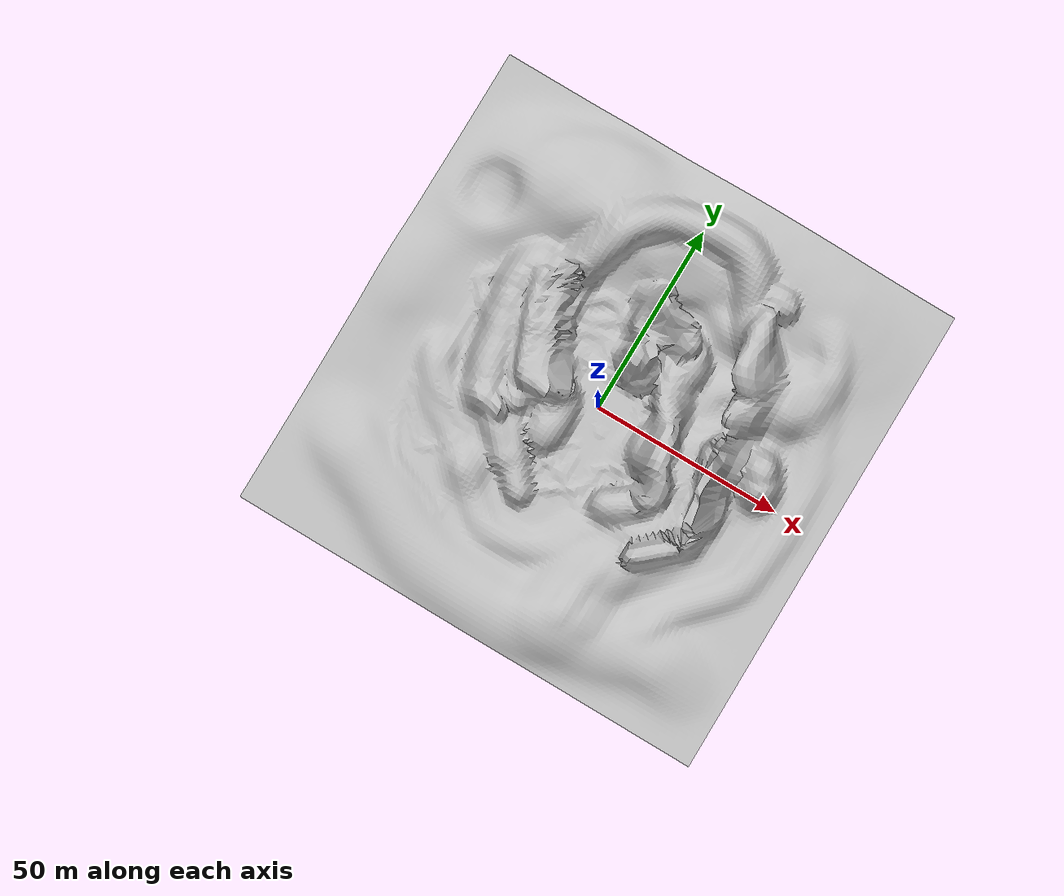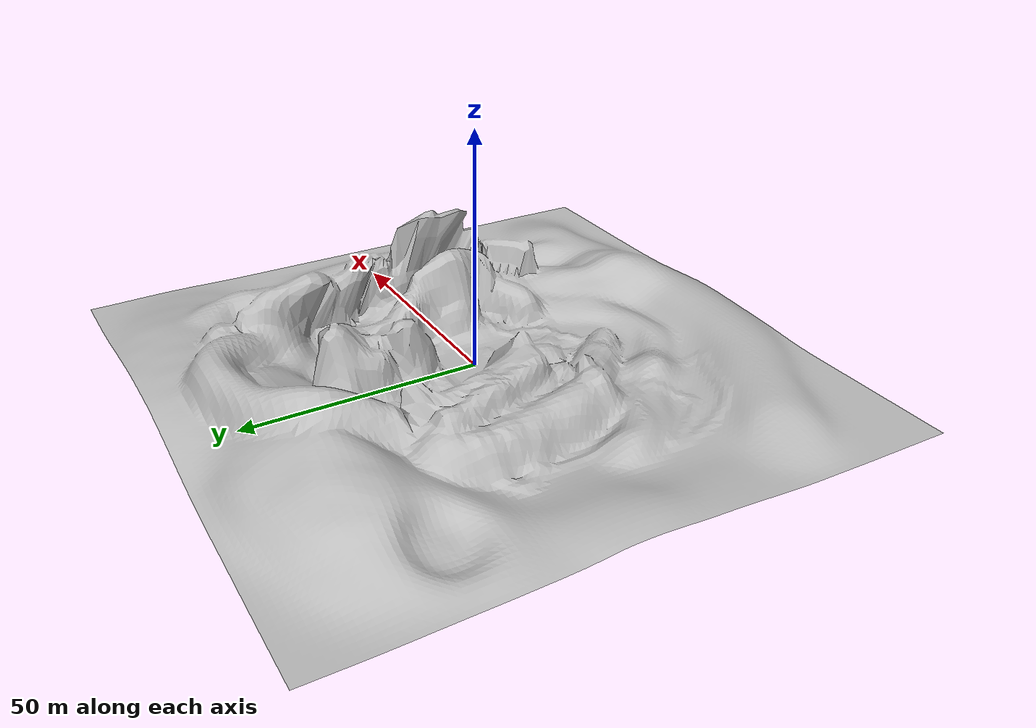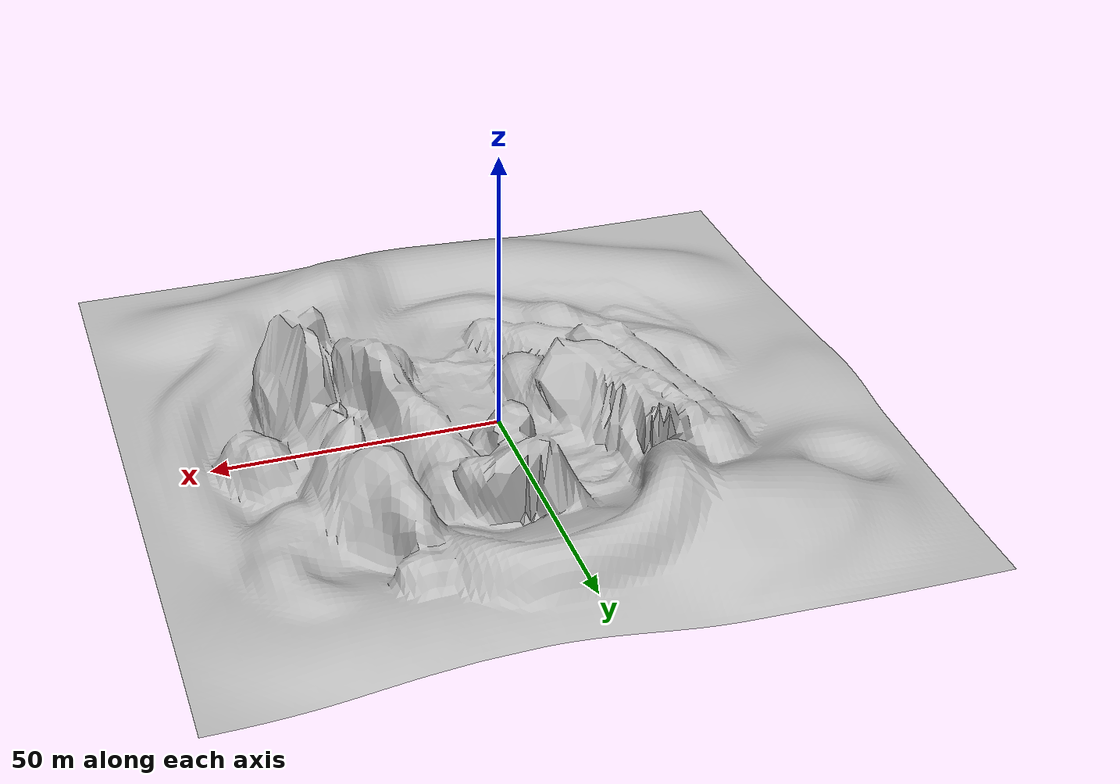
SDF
<?xml version="1.0" encoding="UTF-8" ?>
<sdf version="1.4">
  <world name="default">
    <scene>
      <ambient>0.5 0.5 0.5 1</ambient>
      <background>0.5 0.5 0.5 1</background>
      <shadows>false</shadows>
    </scene>
    <physics type="ode">
      <gravity>0 0 -9.81</gravity>
      <ode>
        <solver>
          <type>quick</type>
          <iters>10</iters>
          <sor>1.3</sor>
        </solver>
        <constraints>
          <cfm>0.0</cfm>
          <erp>0.2</erp>
          <contact_max_correcting_vel>10</contact_max_correcting_vel>
          <contact_surface_layer>0.001</contact_surface_layer>
        </constraints>
      </ode>
      <max_step_size>0.001</max_step_size>
    </physics>
    <light type="directional" name="directional_light_1">
      <pose>0 20 20 0.1 0.1 0</pose>
      <diffuse>1 1 1 1</diffuse>
      <specular>1 1 1 1</specular>
      <attenuation>
        <range>300</range>
      </attenuation>
      <direction>0.1 0.1 -1</direction>
      <cast_shadows>false</cast_shadows>
    </light>
    <model name="120m_landscape_smooth_tri">
      <link name="120m_landscape_smooth_tri_link">
        <pose>0 0 0 0 0 0</pose>
        <collision name="120m_landscape_smooth_tri_collision">
          <geometry>
            <mesh>
              <uri>file://120m_landscape_smooth_tri.dae</uri>
              <scale>1 1 1</scale>
            </mesh>
          </geometry>
        </collision>
        <visual name="120m_landscape_smooth_tri">
          <geometry>
            <mesh>
              <uri>file://120m_landscape_smooth_tri.dae</uri>
              <scale>1 1 1</scale>
            </mesh>
          </geometry>
          <cast_shadows>false</cast_shadows>
        </visual>
      </link>
      <static>true</static>
    </model>
  </world>
</sdf>
